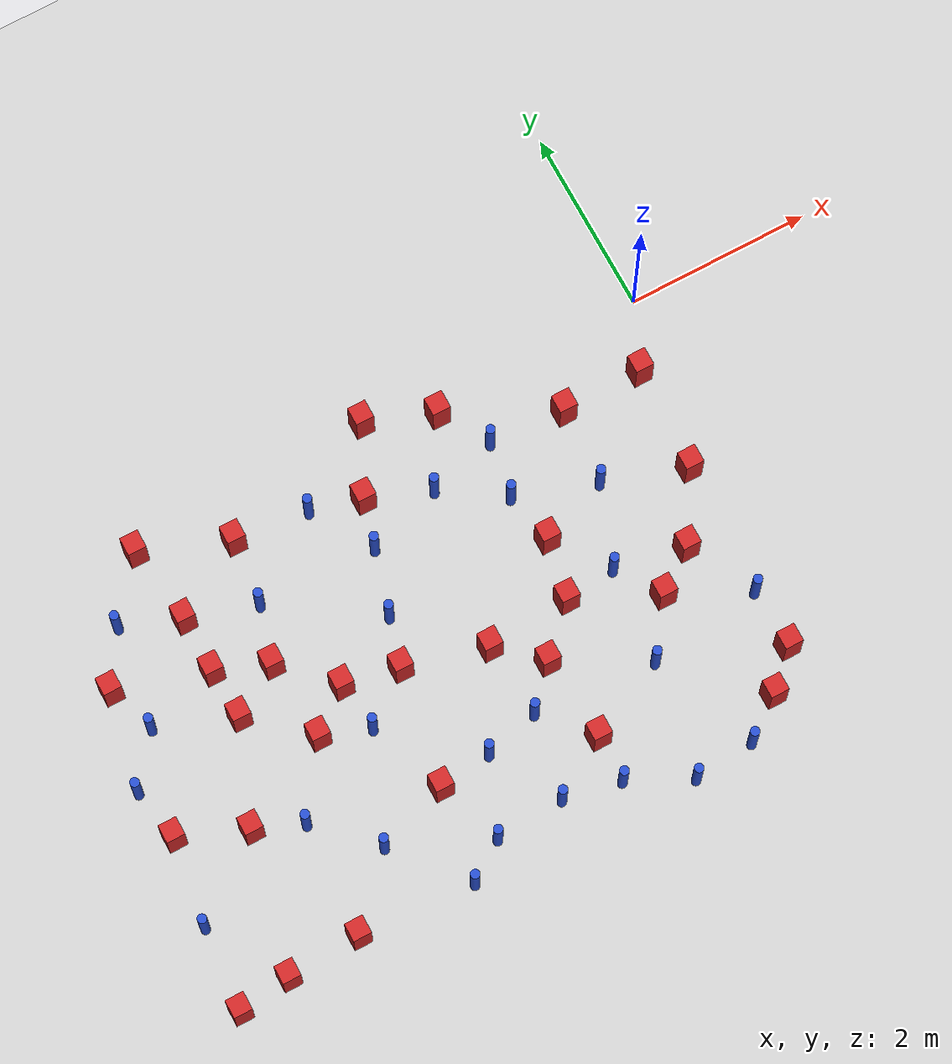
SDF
<sdf version="1.6">
 <world name="default">
  <model name="ground_plane">
   <static>1</static>
   <link name="link">
    <collision name="collision">
     <geometry><plane><normal>0 0 1</normal><size>100 100</size></plane></geometry>
     <surface><friction><ode><mu>100</mu><mu2>50</mu2></ode></friction></surface>
    </collision>
    <visual name="visual">
     <cast_shadows>0</cast_shadows>
     <geometry><plane><normal>0 0 1</normal><size>100 100</size></plane></geometry>
     <material>
      <ambient>1.0 1.0 1.0 1.0</ambient>
      <diffuse>0.8 0.8 0.8 1.0</diffuse>
      <specular>0.01 0.01 0.01 1.000000</specular>
     </material>
    </visual>
   </link>
  </model>
  <model name="pole_obstacle4">
   <static>true</static>
   <pose>-6.85809004613 -2.21721014022 7.38925637345e-09 -8.47170692798e-08 1.24976764937e-08 -1.74513093023e-07</pose>
   <link name="link">
    <pose>0 0 0.3 0 -0 0</pose>
    <inertial>
     <mass>1</mass>
     <inertia><ixx>0.145833</ixx><ixy>0</ixy><ixz>0</ixz><iyy>0.145833</iyy><iyz>0</iyz><izz>0.125</izz></inertia>
    </inertial>
    <collision name="collision">
     <geometry><cylinder><radius>0.05</radius><length>.6</length></cylinder></geometry>
    </collision>
    <visual name="visual">
     <geometry><cylinder><radius>0.05</radius><length>.6</length></cylinder></geometry>
     <material>
      <script><name>Gazebo/Blue</name><uri>file://media/materials/scripts/gazebo.material</uri></script>
     </material>
    </visual>
   </link>
  </model>
  <model name="pole_obstacle18">
   <static>true</static>
   <pose>-2.78637123942 -0.84800028102 7.38925637345e-09 -8.471706928e-08 1.24976765177e-08 -1.74513093012e-07</pose>
   <link name="link">
    <pose>0 0 0.3 0 -0 0</pose>
    <inertial>
     <mass>1</mass>
     <inertia><ixx>0.145833</ixx><ixy>0</ixy><ixz>0</ixz><iyy>0.145833</iyy><iyz>0</iyz><izz>0.125</izz></inertia>
    </inertial>
    <collision name="collision">
     <geometry><cylinder><radius>0.05</radius><length>.6</length></cylinder></geometry>
    </collision>
    <visual name="visual">
     <geometry><cylinder><radius>0.05</radius><length>.6</length></cylinder></geometry>
     <material>
      <script><name>Gazebo/Blue</name><uri>file://media/materials/scripts/gazebo.material</uri></script>
     </material>
    </visual>
   </link>
  </model>
  <model name="pole_obstacle24">
   <static>true</static>
   <pose>-3.60029012766 -3.52607259981 7.38925637345e-09 -8.47170692798e-08 1.24976764939e-08 -1.74513093025e-07</pose>
   <link name="link">
    <pose>0 0 0.3 0 -0 0</pose>
    <inertial>
     <mass>1</mass>
     <inertia><ixx>0.145833</ixx><ixy>0</ixy><ixz>0</ixz><iyy>0.145833</iyy><iyz>0</iyz><izz>0.125</izz></inertia>
    </inertial>
    <collision name="collision">
     <geometry><cylinder><radius>0.05</radius><length>.6</length></cylinder></geometry>
    </collision>
    <visual name="visual">
     <geometry><cylinder><radius>0.05</radius><length>.6</length></cylinder></geometry>
     <material>
      <script><name>Gazebo/Blue</name><uri>file://media/materials/scripts/gazebo.material</uri></script>
     </material>
    </visual>
   </link>
  </model>
  <model name="square_post_obstacle20">
   <static>true</static>
   <pose>-6.62490915366 -1.16539948414 1.91545236811e-07 -7.35059704564e-06 1.12565212e-07 2.39332434364e-05</pose>
   <link name="link">
    <pose>0 0 0.25 0 -0 0</pose>
    <inertial>
     <mass>100</mass>
     <inertia>
      <ixx>0.166667</ixx>
      <ixy>0</ixy>
      <ixz>0</ixz>
      <iyy>0.166667</iyy>
      <iyz>0</iyz>
      <izz>0.166667</izz>
     </inertia>
    </inertial>
    <collision name="collision"><geometry><box><size>.2 .2 .5</size></box></geometry></collision>
    <visual name="visual">
     <geometry><box><size>.2 .2 .5</size></box></geometry>
     <material>
      <script><name>Gazebo/Red</name><uri>file://media/materials/scripts/gazebo.material</uri></script>
     </material>
    </visual>
   </link>
  </model>
  <model name="square_post_obstacle22">
   <static>true</static>
   <pose>-5.64012717985 -1.46189928526 1.91545236811e-07 -7.35059704564e-06 1.12565212e-07 2.39332434364e-05</pose>
   <link name="link">
    <pose>0 0 0.25 0 -0 0</pose>
    <inertial>
     <mass>100</mass>
     <inertia>
      <ixx>0.166667</ixx>
      <ixy>0</ixy>
      <ixz>0</ixz>
      <iyy>0.166667</iyy>
      <iyz>0</iyz>
      <izz>0.166667</izz>
     </inertia>
    </inertial>
    <collision name="collision"><geometry><box><size>.2 .2 .5</size></box></geometry></collision>
    <visual name="visual">
     <geometry><box><size>.2 .2 .5</size></box></geometry>
     <material>
      <script><name>Gazebo/Red</name><uri>file://media/materials/scripts/gazebo.material</uri></script>
     </material>
    </visual>
   </link>
  </model>
  <model name="square_post_obstacle24">
   <static>true</static>
   <pose>-4.18022485447 -3.59467026994 1.91545236811e-07 -7.35059704564e-06 1.12565212e-07 2.39332434364e-05</pose>
   <link name="link">
    <pose>0 0 0.25 0 -0 0</pose>
    <inertial>
     <mass>100</mass>
     <inertia>
      <ixx>0.166667</ixx>
      <ixy>0</ixy>
      <ixz>0</ixz>
      <iyy>0.166667</iyy>
      <iyz>0</iyz>
      <izz>0.166667</izz>
     </inertia>
    </inertial>
    <collision name="collision"><geometry><box><size>.2 .2 .5</size></box></geometry></collision>
    <visual name="visual">
     <geometry><box><size>.2 .2 .5</size></box></geometry>
     <material>
      <script><name>Gazebo/Red</name><uri>file://media/materials/scripts/gazebo.material</uri></script>
     </material>
    </visual>
   </link>
  </model>
  <model name="pole_obstacle35">
   <static>true</static>
   <pose>-3.60662241844 -1.10379931523 7.38925637345e-09 -8.47170692796e-08 1.24976764713e-08 -1.74513093037e-07</pose>
   <link name="link">
    <pose>0 0 0.3 0 -0 0</pose>
    <inertial>
     <mass>1</mass>
     <inertia><ixx>0.145833</ixx><ixy>0</ixy><ixz>0</ixz><iyy>0.145833</iyy><iyz>0</iyz><izz>0.125</izz></inertia>
    </inertial>
    <collision name="collision">
     <geometry><cylinder><radius>0.05</radius><length>.6</length></cylinder></geometry>
    </collision>
    <visual name="visual">
     <geometry><cylinder><radius>0.05</radius><length>.6</length></cylinder></geometry>
     <material>
      <script><name>Gazebo/Blue</name><uri>file://media/materials/scripts/gazebo.material</uri></script>
     </material>
    </visual>
   </link>
  </model>
  <model name="square_post_obstacle31">
   <static>true</static>
   <pose>-3.1041224304 0.133706352903 1.91545236811e-07 -7.35059704564e-06 1.12565212e-07 2.39332434364e-05</pose>
   <link name="link">
    <pose>0 0 0.25 0 -0 0</pose>
    <inertial>
     <mass>100</mass>
     <inertia>
      <ixx>0.166667</ixx>
      <ixy>0</ixy>
      <ixz>0</ixz>
      <iyy>0.166667</iyy>
      <iyz>0</iyz>
      <izz>0.166667</izz>
     </inertia>
    </inertial>
    <collision name="collision"><geometry><box><size>.2 .2 .5</size></box></geometry></collision>
    <visual name="visual">
     <geometry><box><size>.2 .2 .5</size></box></geometry>
     <material>
      <script><name>Gazebo/Red</name><uri>file://media/materials/scripts/gazebo.material</uri></script>
     </material>
    </visual>
   </link>
  </model>
  <model name="pole_obstacle44">
   <static>true</static>
   <pose>-3.80846941066 -1.79790942573 7.38925637345e-09 -8.471706928e-08 1.24976765152e-08 -1.74513093012e-07</pose>
   <link name="link">
    <pose>0 0 0.3 0 -0 0</pose>
    <inertial>
     <mass>1</mass>
     <inertia><ixx>0.145833</ixx><ixy>0</ixy><ixz>0</ixz><iyy>0.145833</iyy><iyz>0</iyz><izz>0.125</izz></inertia>
    </inertial>
    <collision name="collision">
     <geometry><cylinder><radius>0.05</radius><length>.6</length></cylinder></geometry>
    </collision>
    <visual name="visual">
     <geometry><cylinder><radius>0.05</radius><length>.6</length></cylinder></geometry>
     <material>
      <script><name>Gazebo/Blue</name><uri>file://media/materials/scripts/gazebo.material</uri></script>
     </material>
    </visual>
   </link>
  </model>
  <model name="square_post_obstacle38">
   <static>true</static>
   <pose>-2.63124596722 -2.96619103879 1.91545236811e-07 -7.35059704564e-06 1.12565212e-07 2.39332434364e-05</pose>
   <link name="link">
    <pose>0 0 0.25 0 -0 0</pose>
    <inertial>
     <mass>100</mass>
     <inertia>
      <ixx>0.166667</ixx>
      <ixy>0</ixy>
      <ixz>0</ixz>
      <iyy>0.166667</iyy>
      <iyz>0</iyz>
      <izz>0.166667</izz>
     </inertia>
    </inertial>
    <collision name="collision"><geometry><box><size>.2 .2 .5</size></box></geometry></collision>
    <visual name="visual">
     <geometry><box><size>.2 .2 .5</size></box></geometry>
     <material>
      <script><name>Gazebo/Red</name><uri>file://media/materials/scripts/gazebo.material</uri></script>
     </material>
    </visual>
   </link>
  </model>
  <model name="pole_obstacle53">
   <static>true</static>
   <pose>-1.8977521493 -4.72266571324 7.38925637345e-09 -8.47170692799e-08 1.24976765033e-08 -1.74513093018e-07</pose>
   <link name="link">
    <pose>0 0 0.3 0 -0 0</pose>
    <inertial>
     <mass>1</mass>
     <inertia><ixx>0.145833</ixx><ixy>0</ixy><ixz>0</ixz><iyy>0.145833</iyy><iyz>0</iyz><izz>0.125</izz></inertia>
    </inertial>
    <collision name="collision">
     <geometry><cylinder><radius>0.05</radius><length>.6</length></cylinder></geometry>
    </collision>
    <visual name="visual">
     <geometry><cylinder><radius>0.05</radius><length>.6</length></cylinder></geometry>
     <material>
      <script><name>Gazebo/Blue</name><uri>file://media/materials/scripts/gazebo.material</uri></script>
     </material>
    </visual>
   </link>
  </model>
  <model name="square_post_obstacle43">
   <static>true</static>
   <pose>-0.8266827173 -2.58216336904 1.91545236811e-07 -7.35059704564e-06 1.12565212e-07 2.39332434364e-05</pose>
   <link name="link">
    <pose>0 0 0.25 0 -0 0</pose>
    <inertial>
     <mass>100</mass>
     <inertia>
      <ixx>0.166667</ixx>
      <ixy>0</ixy>
      <ixz>0</ixz>
      <iyy>0.166667</iyy>
      <iyz>0</iyz>
      <izz>0.166667</izz>
     </inertia>
    </inertial>
    <collision name="collision"><geometry><box><size>.2 .2 .5</size></box></geometry></collision>
    <visual name="visual">
     <geometry><box><size>.2 .2 .5</size></box></geometry>
     <material>
      <script><name>Gazebo/Red</name><uri>file://media/materials/scripts/gazebo.material</uri></script>
     </material>
    </visual>
   </link>
  </model>
  <model name="pole_obstacle58">
   <static>true</static>
   <pose>-5.53183776734 -3.29240936993 7.38925637345e-09 -8.47170692798e-08 1.24976764937e-08 -1.74513093023e-07</pose>
   <link name="link">
    <pose>0 0 0.3 0 -0 0</pose>
    <inertial>
     <mass>1</mass>
     <inertia><ixx>0.145833</ixx><ixy>0</ixy><ixz>0</ixz><iyy>0.145833</iyy><iyz>0</iyz><izz>0.125</izz></inertia>
    </inertial>
    <collision name="collision">
     <geometry><cylinder><radius>0.05</radius><length>.6</length></cylinder></geometry>
    </collision>
    <visual name="visual">
     <geometry><cylinder><radius>0.05</radius><length>.6</length></cylinder></geometry>
     <material>
      <script><name>Gazebo/Blue</name><uri>file://media/materials/scripts/gazebo.material</uri></script>
     </material>
    </visual>
   </link>
  </model>
  <model name="square_post_obstacle49">
   <static>true</static>
   <pose>-1.27168463646 -2.90664368025 1.91545236811e-07 -7.35059704564e-06 1.12565212e-07 2.39332434364e-05</pose>
   <link name="link">
    <pose>0 0 0.25 0 -0 0</pose>
    <inertial>
     <mass>100</mass>
     <inertia>
      <ixx>0.166667</ixx>
      <ixy>0</ixy>
      <ixz>0</ixz>
      <iyy>0.166667</iyy>
      <iyz>0</iyz>
      <izz>0.166667</izz>
     </inertia>
    </inertial>
    <collision name="collision"><geometry><box><size>.2 .2 .5</size></box></geometry></collision>
    <visual name="visual">
     <geometry><box><size>.2 .2 .5</size></box></geometry>
     <material>
      <script><name>Gazebo/Red</name><uri>file://media/materials/scripts/gazebo.material</uri></script>
     </material>
    </visual>
   </link>
  </model>
  <model name="square_post_obstacle50">
   <static>true</static>
   <pose>-6.39555036892 -4.57048455785 1.91545236811e-07 -7.35059704564e-06 1.12565212e-07 2.39332434364e-05</pose>
   <link name="link">
    <pose>0 0 0.25 0 -0 0</pose>
    <inertial>
     <mass>100</mass>
     <inertia>
      <ixx>0.166667</ixx>
      <ixy>0</ixy>
      <ixz>0</ixz>
      <iyy>0.166667</iyy>
      <iyz>0</iyz>
      <izz>0.166667</izz>
     </inertia>
    </inertial>
    <collision name="collision"><geometry><box><size>.2 .2 .5</size></box></geometry></collision>
    <visual name="visual">
     <geometry><box><size>.2 .2 .5</size></box></geometry>
     <material>
      <script><name>Gazebo/Red</name><uri>file://media/materials/scripts/gazebo.material</uri></script>
     </material>
    </visual>
   </link>
  </model>
  <model name="square_post_obstacle51">
   <static>true</static>
   <pose>-5.01341828062 -2.56068881937 1.91545236811e-07 -7.35059704564e-06 1.12565212e-07 2.39332434364e-05</pose>
   <link name="link">
    <pose>0 0 0.25 0 -0 0</pose>
    <inertial>
     <mass>100</mass>
     <inertia>
      <ixx>0.166667</ixx>
      <ixy>0</ixy>
      <ixz>0</ixz>
      <iyy>0.166667</iyy>
      <iyz>0</iyz>
      <izz>0.166667</izz>
     </inertia>
    </inertial>
    <collision name="collision"><geometry><box><size>.2 .2 .5</size></box></geometry></collision>
    <visual name="visual">
     <geometry><box><size>.2 .2 .5</size></box></geometry>
     <material>
      <script><name>Gazebo/Red</name><uri>file://media/materials/scripts/gazebo.material</uri></script>
     </material>
    </visual>
   </link>
  </model>
  <model name="square_post_obstacle53">
   <static>true</static>
   <pose>-5.64207357756 -0.852080144382 1.91545236811e-07 -7.35059704564e-06 1.12565212e-07 2.39332434364e-05</pose>
   <link name="link">
    <pose>0 0 0.25 0 -0 0</pose>
    <inertial>
     <mass>100</mass>
     <inertia>
      <ixx>0.166667</ixx>
      <ixy>0</ixy>
      <ixz>0</ixz>
      <iyy>0.166667</iyy>
      <iyz>0</iyz>
      <izz>0.166667</izz>
     </inertia>
    </inertial>
    <collision name="collision"><geometry><box><size>.2 .2 .5</size></box></geometry></collision>
    <visual name="visual">
     <geometry><box><size>.2 .2 .5</size></box></geometry>
     <material>
      <script><name>Gazebo/Red</name><uri>file://media/materials/scripts/gazebo.material</uri></script>
     </material>
    </visual>
   </link>
  </model>
  <model name="square_post_obstacle55">
   <static>true</static>
   <pose>-2.02286121717 -1.84203250634 1.91545236811e-07 -7.35059704564e-06 1.12565212e-07 2.39332434364e-05</pose>
   <link name="link">
    <pose>0 0 0.25 0 -0 0</pose>
    <inertial>
     <mass>100</mass>
     <inertia>
      <ixx>0.166667</ixx>
      <ixy>0</ixy>
      <ixz>0</ixz>
      <iyy>0.166667</iyy>
      <iyz>0</iyz>
      <izz>0.166667</izz>
     </inertia>
    </inertial>
    <collision name="collision"><geometry><box><size>.2 .2 .5</size></box></geometry></collision>
    <visual name="visual">
     <geometry><box><size>.2 .2 .5</size></box></geometry>
     <material>
      <script><name>Gazebo/Red</name><uri>file://media/materials/scripts/gazebo.material</uri></script>
     </material>
    </visual>
   </link>
  </model>
  <model name="pole_obstacle69">
   <static>true</static>
   <pose>-1.2300331383 -4.66093544913 7.38925637345e-09 -8.47170692799e-08 1.24976765033e-08 -1.74513093018e-07</pose>
   <link name="link">
    <pose>0 0 0.3 0 -0 0</pose>
    <inertial>
     <mass>1</mass>
     <inertia><ixx>0.145833</ixx><ixy>0</ixy><ixz>0</ixz><iyy>0.145833</iyy><iyz>0</iyz><izz>0.125</izz></inertia>
    </inertial>
    <collision name="collision">
     <geometry><cylinder><radius>0.05</radius><length>.6</length></cylinder></geometry>
    </collision>
    <visual name="visual">
     <geometry><cylinder><radius>0.05</radius><length>.6</length></cylinder></geometry>
     <material>
      <script><name>Gazebo/Blue</name><uri>file://media/materials/scripts/gazebo.material</uri></script>
     </material>
    </visual>
   </link>
  </model>
  <model name="square_post_obstacle62">
   <static>true</static>
   <pose>-3.95971024821 -2.32744851067 1.91545236811e-07 -7.35059704564e-06 1.12565212e-07 2.39332434364e-05</pose>
   <link name="link">
    <pose>0 0 0.25 0 -0 0</pose>
    <inertial>
     <mass>100</mass>
     <inertia>
      <ixx>0.166667</ixx>
      <ixy>0</ixy>
      <ixz>0</ixz>
      <iyy>0.166667</iyy>
      <iyz>0</iyz>
      <izz>0.166667</izz>
     </inertia>
    </inertial>
    <collision name="collision"><geometry><box><size>.2 .2 .5</size></box></geometry></collision>
    <visual name="visual">
     <geometry><box><size>.2 .2 .5</size></box></geometry>
     <material>
      <script><name>Gazebo/Red</name><uri>file://media/materials/scripts/gazebo.material</uri></script>
     </material>
    </visual>
   </link>
  </model>
  <model name="pole_obstacle74">
   <static>true</static>
   <pose>-4.01196968462 -0.438951418318 7.38925637345e-09 -8.47170692799e-08 1.24976765016e-08 -1.74513093019e-07</pose>
   <link name="link">
    <pose>0 0 0.3 0 -0 0</pose>
    <inertial>
     <mass>1</mass>
     <inertia><ixx>0.145833</ixx><ixy>0</ixy><ixz>0</ixz><iyy>0.145833</iyy><iyz>0</iyz><izz>0.125</izz></inertia>
    </inertial>
    <collision name="collision">
     <geometry><cylinder><radius>0.05</radius><length>.6</length></cylinder></geometry>
    </collision>
    <visual name="visual">
     <geometry><cylinder><radius>0.05</radius><length>.6</length></cylinder></geometry>
     <material>
      <script><name>Gazebo/Blue</name><uri>file://media/materials/scripts/gazebo.material</uri></script>
     </material>
    </visual>
   </link>
  </model>
  <model name="square_post_obstacle65">
   <static>true</static>
   <pose>-0.33852460674 -0.71958522147 1.91545236811e-07 -7.35059704564e-06 1.12565212e-07 2.39332434364e-05</pose>
   <link name="link">
    <pose>0 0 0.25 0 -0 0</pose>
    <inertial>
     <mass>100</mass>
     <inertia>
      <ixx>0.166667</ixx>
      <ixy>0</ixy>
      <ixz>0</ixz>
      <iyy>0.166667</iyy>
      <iyz>0</iyz>
      <izz>0.166667</izz>
     </inertia>
    </inertial>
    <collision name="collision"><geometry><box><size>.2 .2 .5</size></box></geometry></collision>
    <visual name="visual">
     <geometry><box><size>.2 .2 .5</size></box></geometry>
     <material>
      <script><name>Gazebo/Red</name><uri>file://media/materials/scripts/gazebo.material</uri></script>
     </material>
    </visual>
   </link>
  </model>
  <model name="square_post_obstacle69">
   <static>true</static>
   <pose>-0.391756472849 -1.85889913573 1.91545236811e-07 -7.35059704564e-06 1.12565212e-07 2.39332434364e-05</pose>
   <link name="link">
    <pose>0 0 0.25 0 -0 0</pose>
    <inertial>
     <mass>100</mass>
     <inertia>
      <ixx>0.166667</ixx>
      <ixy>0</ixy>
      <ixz>0</ixz>
      <iyy>0.166667</iyy>
      <iyz>0</iyz>
      <izz>0.166667</izz>
     </inertia>
    </inertial>
    <collision name="collision"><geometry><box><size>.2 .2 .5</size></box></geometry></collision>
    <visual name="visual">
     <geometry><box><size>.2 .2 .5</size></box></geometry>
     <material>
      <script><name>Gazebo/Red</name><uri>file://media/materials/scripts/gazebo.material</uri></script>
     </material>
    </visual>
   </link>
  </model>
  <model name="square_post_obstacle70">
   <static>true</static>
   <pose>-6.75312646995 -2.79024663791 1.91545236811e-07 -7.35059704564e-06 1.12565212e-07 2.39332434364e-05</pose>
   <link name="link">
    <pose>0 0 0.25 0 -0 0</pose>
    <inertial>
     <mass>100</mass>
     <inertia>
      <ixx>0.166667</ixx>
      <ixy>0</ixy>
      <ixz>0</ixz>
      <iyy>0.166667</iyy>
      <iyz>0</iyz>
      <izz>0.166667</izz>
     </inertia>
    </inertial>
    <collision name="collision"><geometry><box><size>.2 .2 .5</size></box></geometry></collision>
    <visual name="visual">
     <geometry><box><size>.2 .2 .5</size></box></geometry>
     <material>
      <script><name>Gazebo/Red</name><uri>file://media/materials/scripts/gazebo.material</uri></script>
     </material>
    </visual>
   </link>
  </model>
  <model name="square_post_obstacle73">
   <static>true</static>
   <pose>-1.22498144594 -0.72927857454 1.91545236811e-07 -7.35059704564e-06 1.12565212e-07 2.39332434364e-05</pose>
   <link name="link">
    <pose>0 0 0.25 0 -0 0</pose>
    <inertial>
     <mass>100</mass>
     <inertia>
      <ixx>0.166667</ixx>
      <ixy>0</ixy>
      <ixz>0</ixz>
      <iyy>0.166667</iyy>
      <iyz>0</iyz>
      <izz>0.166667</izz>
     </inertia>
    </inertial>
    <collision name="collision"><geometry><box><size>.2 .2 .5</size></box></geometry></collision>
    <visual name="visual">
     <geometry><box><size>.2 .2 .5</size></box></geometry>
     <material>
      <script><name>Gazebo/Red</name><uri>file://media/materials/scripts/gazebo.material</uri></script>
     </material>
    </visual>
   </link>
  </model>
  <model name="square_post_obstacle76">
   <static>true</static>
   <pose>-0.430552064291 -3.96055170609 1.91545236811e-07 -7.35059704564e-06 1.12565212e-07 2.39332434364e-05</pose>
   <link name="link">
    <pose>0 0 0.25 0 -0 0</pose>
    <inertial>
     <mass>100</mass>
     <inertia>
      <ixx>0.166667</ixx>
      <ixy>0</ixy>
      <ixz>0</ixz>
      <iyy>0.166667</iyy>
      <iyz>0</iyz>
      <izz>0.166667</izz>
     </inertia>
    </inertial>
    <collision name="collision"><geometry><box><size>.2 .2 .5</size></box></geometry></collision>
    <visual name="visual">
     <geometry><box><size>.2 .2 .5</size></box></geometry>
     <material>
      <script><name>Gazebo/Red</name><uri>file://media/materials/scripts/gazebo.material</uri></script>
     </material>
    </visual>
   </link>
  </model>
  <model name="square_post_obstacle82">
   <static>true</static>
   <pose>-2.55429075334 -3.87870317058 1.91545236811e-07 -7.35059704564e-06 1.12565212e-07 2.39332434364e-05</pose>
   <link name="link">
    <pose>0 0 0.25 0 -0 0</pose>
    <inertial>
     <mass>100</mass>
     <inertia>
      <ixx>0.166667</ixx>
      <ixy>0</ixy>
      <ixz>0</ixz>
      <iyy>0.166667</iyy>
      <iyz>0</iyz>
      <izz>0.166667</izz>
     </inertia>
    </inertial>
    <collision name="collision"><geometry><box><size>.2 .2 .5</size></box></geometry></collision>
    <visual name="visual">
     <geometry><box><size>.2 .2 .5</size></box></geometry>
     <material>
      <script><name>Gazebo/Red</name><uri>file://media/materials/scripts/gazebo.material</uri></script>
     </material>
    </visual>
   </link>
  </model>
  <model name="square_post_obstacle101">
   <static>true</static>
   <pose>-5.59590221526 -4.52553634037 1.91545236811e-07 -7.35059704564e-06 1.12565212e-07 2.39332434364e-05</pose>
   <link name="link">
    <pose>0 0 0.25 0 -0 0</pose>
    <inertial>
     <mass>100</mass>
     <inertia>
      <ixx>0.166667</ixx>
      <ixy>0</ixy>
      <ixz>0</ixz>
      <iyy>0.166667</iyy>
      <iyz>0</iyz>
      <izz>0.166667</izz>
     </inertia>
    </inertial>
    <collision name="collision"><geometry><box><size>.2 .2 .5</size></box></geometry></collision>
    <visual name="visual">
     <geometry><box><size>.2 .2 .5</size></box></geometry>
     <material>
      <script><name>Gazebo/Red</name><uri>file://media/materials/scripts/gazebo.material</uri></script>
     </material>
    </visual>
   </link>
  </model>
  <model name="square_post_obstacle103">
   <static>true</static>
   <pose>-2.15668860221 -2.48897807708 1.91545236811e-07 -7.35059704564e-06 1.12565212e-07 2.39332434364e-05</pose>
   <link name="link">
    <pose>0 0 0.25 0 -0 0</pose>
    <inertial>
     <mass>100</mass>
     <inertia>
      <ixx>0.166667</ixx>
      <ixy>0</ixy>
      <ixz>0</ixz>
      <iyy>0.166667</iyy>
      <iyz>0</iyz>
      <izz>0.166667</izz>
     </inertia>
    </inertial>
    <collision name="collision"><geometry><box><size>.2 .2 .5</size></box></geometry></collision>
    <visual name="visual">
     <geometry><box><size>.2 .2 .5</size></box></geometry>
     <material>
      <script><name>Gazebo/Red</name><uri>file://media/materials/scripts/gazebo.material</uri></script>
     </material>
    </visual>
   </link>
  </model>
  <model name="square_post_obstacle106">
   <static>true</static>
   <pose>-4.56497840276 -2.20641140569 1.91545236811e-07 -7.35059704564e-06 1.12565212e-07 2.39332434364e-05</pose>
   <link name="link">
    <pose>0 0 0.25 0 -0 0</pose>
    <inertial>
     <mass>100</mass>
     <inertia>
      <ixx>0.166667</ixx>
      <ixy>0</ixy>
      <ixz>0</ixz>
      <iyy>0.166667</iyy>
      <iyz>0</iyz>
      <izz>0.166667</izz>
     </inertia>
    </inertial>
    <collision name="collision"><geometry><box><size>.2 .2 .5</size></box></geometry></collision>
    <visual name="visual">
     <geometry><box><size>.2 .2 .5</size></box></geometry>
     <material>
      <script><name>Gazebo/Red</name><uri>file://media/materials/scripts/gazebo.material</uri></script>
     </material>
    </visual>
   </link>
  </model>
  <model name="pole_obstacle116">
   <static>true</static>
   <pose>-2.55784761558 -4.39621082344 7.38925637345e-09 -8.47170692798e-08 1.24976765033e-08 -1.74513093019e-07</pose>
   <link name="link">
    <pose>0 0 0.3 0 -0 0</pose>
    <inertial>
     <mass>1</mass>
     <inertia><ixx>0.145833</ixx><ixy>0</ixy><ixz>0</ixz><iyy>0.145833</iyy><iyz>0</iyz><izz>0.125</izz></inertia>
    </inertial>
    <collision name="collision">
     <geometry><cylinder><radius>0.05</radius><length>.6</length></cylinder></geometry>
    </collision>
    <visual name="visual">
     <geometry><cylinder><radius>0.05</radius><length>.6</length></cylinder></geometry>
     <material>
      <script><name>Gazebo/Blue</name><uri>file://media/materials/scripts/gazebo.material</uri></script>
     </material>
    </visual>
   </link>
  </model>
  <model name="pole_obstacle117">
   <static>true</static>
   <pose>-2.0456798779 -0.670849229206 7.38925637345e-09 -8.47170692799e-08 1.2497676506e-08 -1.74513093019e-07</pose>
   <link name="link">
    <pose>0 0 0.3 0 -0 0</pose>
    <inertial>
     <mass>1</mass>
     <inertia><ixx>0.145833</ixx><ixy>0</ixy><ixz>0</ixz><iyy>0.145833</iyy><iyz>0</iyz><izz>0.125</izz></inertia>
    </inertial>
    <collision name="collision">
     <geometry><cylinder><radius>0.05</radius><length>.6</length></cylinder></geometry>
    </collision>
    <visual name="visual">
     <geometry><cylinder><radius>0.05</radius><length>.6</length></cylinder></geometry>
     <material>
      <script><name>Gazebo/Blue</name><uri>file://media/materials/scripts/gazebo.material</uri></script>
     </material>
    </visual>
   </link>
  </model>
  <model name="square_post_obstacle118">
   <static>true</static>
   <pose>-0.801017596761 -4.32858624336 1.91545236811e-07 -7.35059704564e-06 1.12565212e-07 2.39332434364e-05</pose>
   <link name="link">
    <pose>0 0 0.25 0 -0 0</pose>
    <inertial>
     <mass>100</mass>
     <inertia>
      <ixx>0.166667</ixx>
      <ixy>0</ixy>
      <ixz>0</ixz>
      <iyy>0.166667</iyy>
      <iyz>0</iyz>
      <izz>0.166667</izz>
     </inertia>
    </inertial>
    <collision name="collision"><geometry><box><size>.2 .2 .5</size></box></geometry></collision>
    <visual name="visual">
     <geometry><box><size>.2 .2 .5</size></box></geometry>
     <material>
      <script><name>Gazebo/Red</name><uri>file://media/materials/scripts/gazebo.material</uri></script>
     </material>
    </visual>
   </link>
  </model>
  <model name="pole_obstacle121">
   <static>true</static>
   <pose>-1.6794397944 -3.4814540364 7.38925637345e-09 -8.47170692799e-08 1.24976765053e-08 -1.74513093017e-07</pose>
   <link name="link">
    <pose>0 0 0.3 0 -0 0</pose>
    <inertial>
     <mass>1</mass>
     <inertia><ixx>0.145833</ixx><ixy>0</ixy><ixz>0</ixz><iyy>0.145833</iyy><iyz>0</iyz><izz>0.125</izz></inertia>
    </inertial>
    <collision name="collision">
     <geometry><cylinder><radius>0.05</radius><length>.6</length></cylinder></geometry>
    </collision>
    <visual name="visual">
     <geometry><cylinder><radius>0.05</radius><length>.6</length></cylinder></geometry>
     <material>
      <script><name>Gazebo/Blue</name><uri>file://media/materials/scripts/gazebo.material</uri></script>
     </material>
    </visual>
   </link>
  </model>
  <model name="square_post_obstacle123">
   <static>true</static>
   <pose>-3.07062732838 -2.56026403195 1.91545236811e-07 -7.35059704564e-06 1.12565212e-07 2.39332434364e-05</pose>
   <link name="link">
    <pose>0 0 0.25 0 -0 0</pose>
    <inertial>
     <mass>100</mass>
     <inertia>
      <ixx>0.166667</ixx>
      <ixy>0</ixy>
      <ixz>0</ixz>
      <iyy>0.166667</iyy>
      <iyz>0</iyz>
      <izz>0.166667</izz>
     </inertia>
    </inertial>
    <collision name="collision"><geometry><box><size>.2 .2 .5</size></box></geometry></collision>
    <visual name="visual">
     <geometry><box><size>.2 .2 .5</size></box></geometry>
     <material>
      <script><name>Gazebo/Red</name><uri>file://media/materials/scripts/gazebo.material</uri></script>
     </material>
    </visual>
   </link>
  </model>
  <model name="pole_obstacle128">
   <static>true</static>
   <pose>-1.58960128516 -2.43596544374 7.38925637345e-09 -8.47170692799e-08 1.24976765053e-08 -1.74513093017e-07</pose>
   <link name="link">
    <pose>0 0 0.3 0 -0 0</pose>
    <inertial>
     <mass>1</mass>
     <inertia><ixx>0.145833</ixx><ixy>0</ixy><ixz>0</ixz><iyy>0.145833</iyy><iyz>0</iyz><izz>0.125</izz></inertia>
    </inertial>
    <collision name="collision">
     <geometry><cylinder><radius>0.05</radius><length>.6</length></cylinder></geometry>
    </collision>
    <visual name="visual">
     <geometry><cylinder><radius>0.05</radius><length>.6</length></cylinder></geometry>
     <material>
      <script><name>Gazebo/Blue</name><uri>file://media/materials/scripts/gazebo.material</uri></script>
     </material>
    </visual>
   </link>
  </model>
  <model name="pole_obstacle131">
   <static>true</static>
   <pose>-4.49555552897 -2.74438999009 7.38925637345e-09 -8.47170692798e-08 1.24976764937e-08 -1.74513093023e-07</pose>
   <link name="link">
    <pose>0 0 0.3 0 -0 0</pose>
    <inertial>
     <mass>1</mass>
     <inertia><ixx>0.145833</ixx><ixy>0</ixy><ixz>0</ixz><iyy>0.145833</iyy><iyz>0</iyz><izz>0.125</izz></inertia>
    </inertial>
    <collision name="collision">
     <geometry><cylinder><radius>0.05</radius><length>.6</length></cylinder></geometry>
    </collision>
    <visual name="visual">
     <geometry><cylinder><radius>0.05</radius><length>.6</length></cylinder></geometry>
     <material>
      <script><name>Gazebo/Blue</name><uri>file://media/materials/scripts/gazebo.material</uri></script>
     </material>
    </visual>
   </link>
  </model>
  <model name="pole_obstacle135">
   <static>true</static>
   <pose>-4.34214488802 -4.61151547564 7.38925637345e-09 -8.47170692796e-08 1.24976764786e-08 -1.74513093032e-07</pose>
   <link name="link">
    <pose>0 0 0.3 0 -0 0</pose>
    <inertial>
     <mass>1</mass>
     <inertia><ixx>0.145833</ixx><ixy>0</ixy><ixz>0</ixz><iyy>0.145833</iyy><iyz>0</iyz><izz>0.125</izz></inertia>
    </inertial>
    <collision name="collision">
     <geometry><cylinder><radius>0.05</radius><length>.6</length></cylinder></geometry>
    </collision>
    <visual name="visual">
     <geometry><cylinder><radius>0.05</radius><length>.6</length></cylinder></geometry>
     <material>
      <script><name>Gazebo/Blue</name><uri>file://media/materials/scripts/gazebo.material</uri></script>
     </material>
    </visual>
   </link>
  </model>
  <model name="pole_obstacle137">
   <static>true</static>
   <pose>-1.26593664454 -1.56916466699 7.38925637345e-09 -8.471706928e-08 1.24976765079e-08 -1.74513093017e-07</pose>
   <link name="link">
    <pose>0 0 0.3 0 -0 0</pose>
    <inertial>
     <mass>1</mass>
     <inertia><ixx>0.145833</ixx><ixy>0</ixy><ixz>0</ixz><iyy>0.145833</iyy><iyz>0</iyz><izz>0.125</izz></inertia>
    </inertial>
    <collision name="collision">
     <geometry><cylinder><radius>0.05</radius><length>.6</length></cylinder></geometry>
    </collision>
    <visual name="visual">
     <geometry><cylinder><radius>0.05</radius><length>.6</length></cylinder></geometry>
     <material>
      <script><name>Gazebo/Blue</name><uri>file://media/materials/scripts/gazebo.material</uri></script>
     </material>
    </visual>
   </link>
  </model>
  <model name="square_post_obstacle146">
   <static>true</static>
   <pose>-6.0380687991 -3.08640453431 1.91545236811e-07 -7.35059704564e-06 1.12565212e-07 2.39332434364e-05</pose>
   <link name="link">
    <pose>0 0 0.25 0 -0 0</pose>
    <inertial>
     <mass>100</mass>
     <inertia>
      <ixx>0.166667</ixx>
      <ixy>0</ixy>
      <ixz>0</ixz>
      <iyy>0.166667</iyy>
      <iyz>0</iyz>
      <izz>0.166667</izz>
     </inertia>
    </inertial>
    <collision name="collision"><geometry><box><size>.2 .2 .5</size></box></geometry></collision>
    <visual name="visual">
     <geometry><box><size>.2 .2 .5</size></box></geometry>
     <material>
      <script><name>Gazebo/Red</name><uri>file://media/materials/scripts/gazebo.material</uri></script>
     </material>
    </visual>
   </link>
  </model>
  <model name="pole_obstacle153">
   <static>true</static>
   <pose>-4.9606371881 -3.86731338462 7.38925637345e-09 -8.47170692798e-08 1.24976764937e-08 -1.74513093023e-07</pose>
   <link name="link">
    <pose>0 0 0.3 0 -0 0</pose>
    <inertial>
     <mass>1</mass>
     <inertia><ixx>0.145833</ixx><ixy>0</ixy><ixz>0</ixz><iyy>0.145833</iyy><iyz>0</iyz><izz>0.125</izz></inertia>
    </inertial>
    <collision name="collision">
     <geometry><cylinder><radius>0.05</radius><length>.6</length></cylinder></geometry>
    </collision>
    <visual name="visual">
     <geometry><cylinder><radius>0.05</radius><length>.6</length></cylinder></geometry>
     <material>
      <script><name>Gazebo/Blue</name><uri>file://media/materials/scripts/gazebo.material</uri></script>
     </material>
    </visual>
   </link>
  </model>
  <model name="pole_obstacle157">
   <static>true</static>
   <pose>-4.89833764989 -1.07341657311 7.38925637345e-09 -8.471706928e-08 1.24976765134e-08 -1.74513093015e-07</pose>
   <link name="link">
    <pose>0 0 0.3 0 -0 0</pose>
    <inertial>
     <mass>1</mass>
     <inertia><ixx>0.145833</ixx><ixy>0</ixy><ixz>0</ixz><iyy>0.145833</iyy><iyz>0</iyz><izz>0.125</izz></inertia>
    </inertial>
    <collision name="collision">
     <geometry><cylinder><radius>0.05</radius><length>.6</length></cylinder></geometry>
    </collision>
    <visual name="visual">
     <geometry><cylinder><radius>0.05</radius><length>.6</length></cylinder></geometry>
     <material>
      <script><name>Gazebo/Blue</name><uri>file://media/materials/scripts/gazebo.material</uri></script>
     </material>
    </visual>
   </link>
  </model>
  <model name="pole_obstacle162">
   <static>true</static>
   <pose>-3.93082273673 -4.32410432457 7.38925637345e-09 -8.47170692798e-08 1.24976765033e-08 -1.74513093019e-07</pose>
   <link name="link">
    <pose>0 0 0.3 0 -0 0</pose>
    <inertial>
     <mass>1</mass>
     <inertia><ixx>0.145833</ixx><ixy>0</ixy><ixz>0</ixz><iyy>0.145833</iyy><iyz>0</iyz><izz>0.125</izz></inertia>
    </inertial>
    <collision name="collision">
     <geometry><cylinder><radius>0.05</radius><length>.6</length></cylinder></geometry>
    </collision>
    <visual name="visual">
     <geometry><cylinder><radius>0.05</radius><length>.6</length></cylinder></geometry>
     <material>
      <script><name>Gazebo/Blue</name><uri>file://media/materials/scripts/gazebo.material</uri></script>
     </material>
    </visual>
   </link>
  </model>
  <model name="square_post_obstacle155">
   <static>true</static>
   <pose>-5.755117499 0.00527933713238 1.91545236811e-07 -7.35059704564e-06 1.12565212e-07 2.39332434364e-05</pose>
   <link name="link">
    <pose>0 0 0.25 0 -0 0</pose>
    <inertial>
     <mass>100</mass>
     <inertia>
      <ixx>0.166667</ixx>
      <ixy>0</ixy>
      <ixz>0</ixz>
      <iyy>0.166667</iyy>
      <iyz>0</iyz>
      <izz>0.166667</izz>
     </inertia>
    </inertial>
    <collision name="collision"><geometry><box><size>.2 .2 .5</size></box></geometry></collision>
    <visual name="visual">
     <geometry><box><size>.2 .2 .5</size></box></geometry>
     <material>
      <script><name>Gazebo/Red</name><uri>file://media/materials/scripts/gazebo.material</uri></script>
     </material>
    </visual>
   </link>
  </model>
  <model name="square_post_obstacle170">
   <static>true</static>
   <pose>-2.37324970627 -0.143822979083 1.91545236811e-07 -7.35059704564e-06 1.12565212e-07 2.39332434364e-05</pose>
   <link name="link">
    <pose>0 0 0.25 0 -0 0</pose>
    <inertial>
     <mass>100</mass>
     <inertia>
      <ixx>0.166667</ixx>
      <ixy>0</ixy>
      <ixz>0</ixz>
      <iyy>0.166667</iyy>
      <iyz>0</iyz>
      <izz>0.166667</izz>
     </inertia>
    </inertial>
    <collision name="collision"><geometry><box><size>.2 .2 .5</size></box></geometry></collision>
    <visual name="visual">
     <geometry><box><size>.2 .2 .5</size></box></geometry>
     <material>
      <script><name>Gazebo/Red</name><uri>file://media/materials/scripts/gazebo.material</uri></script>
     </material>
    </visual>
   </link>
  </model>
  <model name="square_post_obstacle179">
   <static>true</static>
   <pose>-6.96788222708 -4.64235938685 1.91545236811e-07 -7.35059704564e-06 1.12565212e-07 2.39332434364e-05</pose>
   <link name="link">
    <pose>0 0 0.25 0 -0 0</pose>
    <inertial>
     <mass>100</mass>
     <inertia>
      <ixx>0.166667</ixx>
      <ixy>0</ixy>
      <ixz>0</ixz>
      <iyy>0.166667</iyy>
      <iyz>0</iyz>
      <izz>0.166667</izz>
     </inertia>
    </inertial>
    <collision name="collision"><geometry><box><size>.2 .2 .5</size></box></geometry></collision>
    <visual name="visual">
     <geometry><box><size>.2 .2 .5</size></box></geometry>
     <material>
      <script><name>Gazebo/Red</name><uri>file://media/materials/scripts/gazebo.material</uri></script>
     </material>
    </visual>
   </link>
  </model>
  <model name="square_post_obstacle180">
   <static>true</static>
   <pose>-5.61605800072 -2.0095939424 1.91545236811e-07 -7.35059704564e-06 1.12565212e-07 2.39332434364e-05</pose>
   <link name="link">
    <pose>0 0 0.25 0 -0 0</pose>
    <inertial>
     <mass>100</mass>
     <inertia>
      <ixx>0.166667</ixx>
      <ixy>0</ixy>
      <ixz>0</ixz>
      <iyy>0.166667</iyy>
      <iyz>0</iyz>
      <izz>0.166667</izz>
     </inertia>
    </inertial>
    <collision name="collision"><geometry><box><size>.2 .2 .5</size></box></geometry></collision>
    <visual name="visual">
     <geometry><box><size>.2 .2 .5</size></box></geometry>
     <material>
      <script><name>Gazebo/Red</name><uri>file://media/materials/scripts/gazebo.material</uri></script>
     </material>
    </visual>
   </link>
  </model>
  <model name="pole_obstacle186">
   <static>true</static>
   <pose>-6.89682037478 -3.73828328062 7.38925637345e-09 -8.47170692798e-08 1.24976764937e-08 -1.74513093023e-07</pose>
   <link name="link">
    <pose>0 0 0.3 0 -0 0</pose>
    <inertial>
     <mass>1</mass>
     <inertia><ixx>0.145833</ixx><ixy>0</ixy><ixz>0</ixz><iyy>0.145833</iyy><iyz>0</iyz><izz>0.125</izz></inertia>
    </inertial>
    <collision name="collision">
     <geometry><cylinder><radius>0.05</radius><length>.6</length></cylinder></geometry>
    </collision>
    <visual name="visual">
     <geometry><cylinder><radius>0.05</radius><length>.6</length></cylinder></geometry>
     <material>
      <script><name>Gazebo/Blue</name><uri>file://media/materials/scripts/gazebo.material</uri></script>
     </material>
    </visual>
   </link>
  </model>
  <model name="pole_obstacle209">
   <static>true</static>
   <pose>-6.26724649318 -0.603512428158 7.38925637345e-09 -8.47170692799e-08 1.24976765038e-08 -1.74513093018e-07</pose>
   <link name="link">
    <pose>0 0 0.3 0 -0 0</pose>
    <inertial>
     <mass>1</mass>
     <inertia><ixx>0.145833</ixx><ixy>0</ixy><ixz>0</ixz><iyy>0.145833</iyy><iyz>0</iyz><izz>0.125</izz></inertia>
    </inertial>
    <collision name="collision">
     <geometry><cylinder><radius>0.05</radius><length>.6</length></cylinder></geometry>
    </collision>
    <visual name="visual">
     <geometry><cylinder><radius>0.05</radius><length>.6</length></cylinder></geometry>
     <material>
      <script><name>Gazebo/Blue</name><uri>file://media/materials/scripts/gazebo.material</uri></script>
     </material>
    </visual>
   </link>
  </model>
  <model name="square_post_obstacle209">
   <static>true</static>
   <pose>-3.46352397337 -0.592371786117 1.91545236811e-07 -7.35059704564e-06 1.12565212e-07 2.39332434364e-05</pose>
   <link name="link">
    <pose>0 0 0.25 0 -0 0</pose>
    <inertial>
     <mass>100</mass>
     <inertia>
      <ixx>0.166667</ixx>
      <ixy>0</ixy>
      <ixz>0</ixz>
      <iyy>0.166667</iyy>
      <iyz>0</iyz>
      <izz>0.166667</izz>
     </inertia>
    </inertial>
    <collision name="collision"><geometry><box><size>.2 .2 .5</size></box></geometry></collision>
    <visual name="visual">
     <geometry><box><size>.2 .2 .5</size></box></geometry>
     <material>
      <script><name>Gazebo/Red</name><uri>file://media/materials/scripts/gazebo.material</uri></script>
     </material>
    </visual>
   </link>
  </model>
  <model name="square_post_obstacle211">
   <static>true</static>
   <pose>-4.82270934434 -0.35925051778 1.91545236811e-07 -7.35059704564e-06 1.12565212e-07 2.39332434364e-05</pose>
   <link name="link">
    <pose>0 0 0.25 0 -0 0</pose>
    <inertial>
     <mass>100</mass>
     <inertia>
      <ixx>0.166667</ixx>
      <ixy>0</ixy>
      <ixz>0</ixz>
      <iyy>0.166667</iyy>
      <iyz>0</iyz>
      <izz>0.166667</izz>
     </inertia>
    </inertial>
    <collision name="collision"><geometry><box><size>.2 .2 .5</size></box></geometry></collision>
    <visual name="visual">
     <geometry><box><size>.2 .2 .5</size></box></geometry>
     <material>
      <script><name>Gazebo/Red</name><uri>file://media/materials/scripts/gazebo.material</uri></script>
     </material>
    </visual>
   </link>
  </model>
  <model name="square_post_obstacle213">
   <static>true</static>
   <pose>-5.08027860596 -1.68449584553 1.91545236811e-07 -7.35059704564e-06 1.12565212e-07 2.39332434364e-05</pose>
   <link name="link">
    <pose>0 0 0.25 0 -0 0</pose>
    <inertial>
     <mass>100</mass>
     <inertia>
      <ixx>0.166667</ixx>
      <ixy>0</ixy>
      <ixz>0</ixz>
      <iyy>0.166667</iyy>
      <iyz>0</iyz>
      <izz>0.166667</izz>
     </inertia>
    </inertial>
    <collision name="collision"><geometry><box><size>.2 .2 .5</size></box></geometry></collision>
    <visual name="visual">
     <geometry><box><size>.2 .2 .5</size></box></geometry>
     <material>
      <script><name>Gazebo/Red</name><uri>file://media/materials/scripts/gazebo.material</uri></script>
     </material>
    </visual>
   </link>
  </model>
  <model name="pole_obstacle215">
   <static>true</static>
   <pose>-3.0035953637 -3.37445427308 7.38925637345e-09 -8.47170692798e-08 1.24976764939e-08 -1.74513093025e-07</pose>
   <link name="link">
    <pose>0 0 0.3 0 -0 0</pose>
    <inertial>
     <mass>1</mass>
     <inertia><ixx>0.145833</ixx><ixy>0</ixy><ixz>0</ixz><iyy>0.145833</iyy><iyz>0</iyz><izz>0.125</izz></inertia>
    </inertial>
    <collision name="collision">
     <geometry><cylinder><radius>0.05</radius><length>.6</length></cylinder></geometry>
    </collision>
    <visual name="visual">
     <geometry><cylinder><radius>0.05</radius><length>.6</length></cylinder></geometry>
     <material>
      <script><name>Gazebo/Blue</name><uri>file://media/materials/scripts/gazebo.material</uri></script>
     </material>
    </visual>
   </link>
  </model>
  <model name="pole_obstacle216">
   <static>true</static>
   <pose>-6.44518418838 -1.69663072248 7.38925637345e-09 -8.471706928e-08 1.24976765134e-08 -1.74513093015e-07</pose>
   <link name="link">
    <pose>0 0 0.3 0 -0 0</pose>
    <inertial>
     <mass>1</mass>
     <inertia><ixx>0.145833</ixx><ixy>0</ixy><ixz>0</ixz><iyy>0.145833</iyy><iyz>0</iyz><izz>0.125</izz></inertia>
    </inertial>
    <collision name="collision">
     <geometry><cylinder><radius>0.05</radius><length>.6</length></cylinder></geometry>
    </collision>
    <visual name="visual">
     <geometry><cylinder><radius>0.05</radius><length>.6</length></cylinder></geometry>
     <material>
      <script><name>Gazebo/Blue</name><uri>file://media/materials/scripts/gazebo.material</uri></script>
     </material>
    </visual>
   </link>
  </model>
  <model name="pole_obstacle219">
   <static>true</static>
   <pose>-2.13727999043 -1.28085997922 7.38925637345e-09 -8.47170692796e-08 1.24976764713e-08 -1.74513093037e-07</pose>
   <link name="link">
    <pose>0 0 0.3 0 -0 0</pose>
    <inertial>
     <mass>1</mass>
     <inertia><ixx>0.145833</ixx><ixy>0</ixy><ixz>0</ixz><iyy>0.145833</iyy><iyz>0</iyz><izz>0.125</izz></inertia>
    </inertial>
    <collision name="collision">
     <geometry><cylinder><radius>0.05</radius><length>.6</length></cylinder></geometry>
    </collision>
    <visual name="visual">
     <geometry><cylinder><radius>0.05</radius><length>.6</length></cylinder></geometry>
     <material>
      <script><name>Gazebo/Blue</name><uri>file://media/materials/scripts/gazebo.material</uri></script>
     </material>
    </visual>
   </link>
  </model>
  <model name="pole_obstacle224">
   <static>true</static>
   <pose>-0.439261990425 -3.31479997922 7.38925637345e-09 -8.471706928e-08 1.24976765137e-08 -1.74513093014e-07</pose>
   <link name="link">
    <pose>0 0 0.3 0 -0 0</pose>
    <inertial>
     <mass>1</mass>
     <inertia><ixx>0.145833</ixx><ixy>0</ixy><ixz>0</ixz><iyy>0.145833</iyy><iyz>0</iyz><izz>0.125</izz></inertia>
    </inertial>
    <collision name="collision">
     <geometry><cylinder><radius>0.05</radius><length>.6</length></cylinder></geometry>
    </collision>
    <visual name="visual">
     <geometry><cylinder><radius>0.05</radius><length>.6</length></cylinder></geometry>
     <material>
      <script><name>Gazebo/Blue</name><uri>file://media/materials/scripts/gazebo.material</uri></script>
     </material>
    </visual>
   </link>
  </model>
  <model name="pole_obstacle225">
   <static>true</static>
   <pose>-3.18097999043 -4.27603997922 7.38925637345e-09 -8.47170692798e-08 1.24976765033e-08 -1.74513093019e-07</pose>
   <link name="link">
    <pose>0 0 0.3 0 -0 0</pose>
    <inertial>
     <mass>1</mass>
     <inertia><ixx>0.145833</ixx><ixy>0</ixy><ixz>0</ixz><iyy>0.145833</iyy><iyz>0</iyz><izz>0.125</izz></inertia>
    </inertial>
    <collision name="collision">
     <geometry><cylinder><radius>0.05</radius><length>.6</length></cylinder></geometry>
    </collision>
    <visual name="visual">
     <geometry><cylinder><radius>0.05</radius><length>.6</length></cylinder></geometry>
     <material>
      <script><name>Gazebo/Blue</name><uri>file://media/materials/scripts/gazebo.material</uri></script>
     </material>
    </visual>
   </link>
  </model>
 </world>
</sdf>
